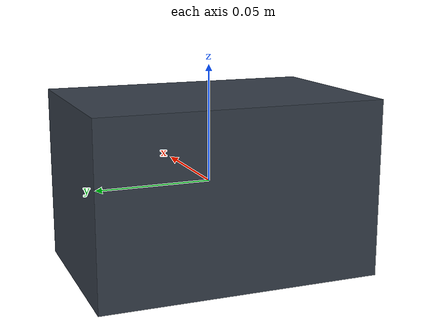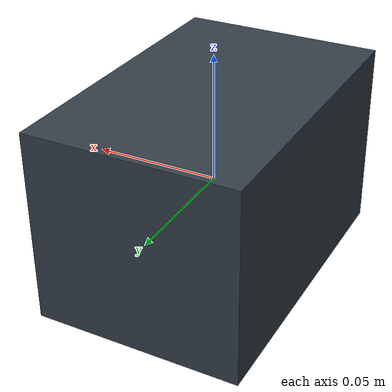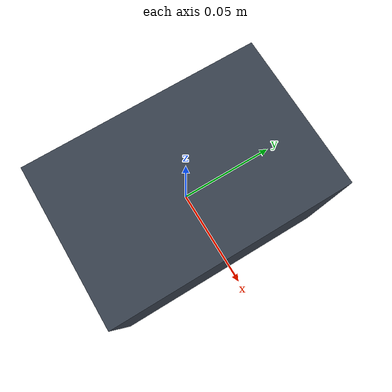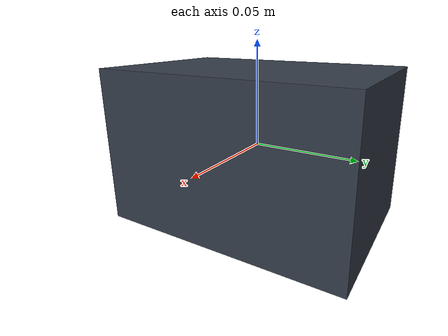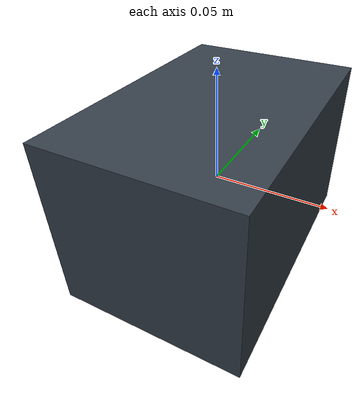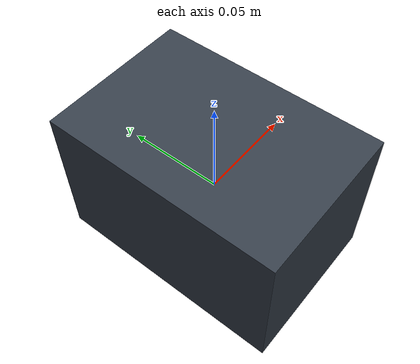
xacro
<?xml version="1.0" ?>

<robot name="flyingcar" xmlns:xacro="https://www.ros.org/wiki/xacro" >
  <xacro:include filename="$(find flyingcar_description)/urdf/base.materials.xacro"/>
  <xacro:include filename="$(find flyingcar_description)/urdf/base.gazebo.xacro"/>
  <xacro:property name="M_PI" value="3.14159"/>

  <link name="base_link">
    <visual>
      <origin xyz="0 0 0" rpy="0 0 0"/>
      <geometry>
        <box size="0.01 0.01 0.01" />
      </geometry>
      <material name="White" />
    </visual>
  </link>

  <!--body of sensor-->
  <joint name="body_link_joint" type="fixed">
    <origin xyz="0 0 0" rpy="0 0 0"/>
    <parent link="base_link"/>
    <child link="body_link" />
  </joint>

  <link name="body_link">
    <inertial>
      <mass value="0.5"/>
      <origin rpy="0 0 0" xyz="0 0 0"/>
      <inertia ixx="0.01" ixy="0" ixz="0" iyy="0.01" iyz="0" izz="0.01"/>
    </inertial>
    <collision name="collision_base_link">
      <geometry>
        <box size="0.08 0.12 0.075"/>
      </geometry>
    </collision>
    <visual>
      <origin rpy="0 0 0" xyz="0 0 0"/>
      <geometry>
        <box size="0.08 0.12 0.075"/>
      </geometry>
      <material name="blue"/>
    </visual>
  </link>

  <!-- Sparkfun imu-->
  <joint name="imu_joint" type="fixed">
    <axis xyz="0 0 0"/>
    <origin xyz="0 0 0"/>
    <parent link="base_link"/>
    <child link="base_imu_link"/>
  </joint>

  <link name="base_imu_link">
    <inertial>
      <mass value="0.001"/>
      <origin rpy="0 0 0" xyz="0 0 0"/>
      <inertia ixx="0.0001" ixy="0" ixz="0" iyy="0.000001" iyz="0" izz="0.0001"/>
    </inertial>
    <visual>
      <origin rpy="0 0 0" xyz="0 0 0"/>
      <geometry>
        <box size="0.001 0.001 0.001"/>
      </geometry>
    </visual>
  </link>

</robot>

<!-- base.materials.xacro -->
<robot name="flyingcar" xmlns:xacro="https://www.ros.org/wiki/xacro" >
  <material name="black">
    <color rgba="0.0 0.0 0.0 1.0"/>
  </material>
  <material name="blue">
    <color rgba="0.203125 0.23828125 0.28515625 1.0"/>
  </material>
  <material name="green">
    <color rgba="0.0 0.8 0.0 1.0"/>
  </material>
  <material name="grey">
    <color rgba="0.2 0.2 0.2 1.0"/>
  </material>
  <material name="orange">
    <color rgba="1.0 0.423529411765 0.0392156862745 1.0"/>
  </material>
  <material name="brown">
    <color rgba="0.870588235294 0.811764705882 0.764705882353 1.0"/>
  </material>
  <material name="red">
    <color rgba="0.80078125 0.12890625 0.1328125 1.0"/>
  </material>
  <material name="white">
    <color rgba="1.0 1.0 1.0 1.0"/>
  </material>
</robot>
